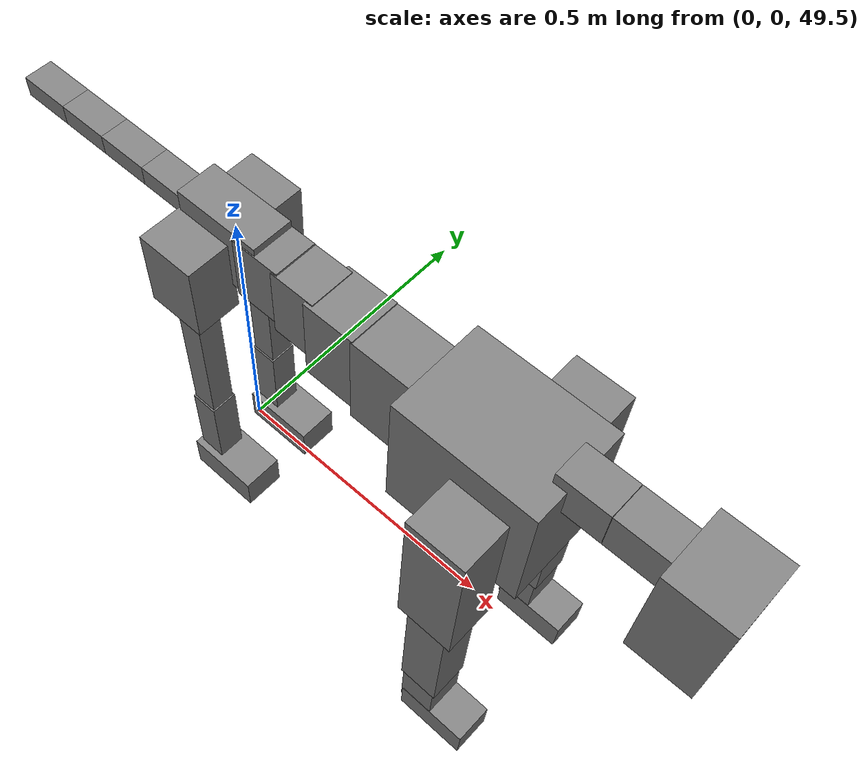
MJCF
<mujoco model="dog">

    <default>
        <joint armature="0.02" stiffness="1" damping="0.2" limited="true"/>
        <geom condim="3" friction="1 0.05 0.05" margin="0.01"/>
        <motor ctrllimited="true" ctrlrange="-1.0 1.0" forcelimited="true" gear="50"/>
    </default>

    <compiler inertiafromgeom="true" angle="radian"/>

    <option timestep="0.016" iterations="50" tolerance="1e-10" solver="Newton" jacobian="dense" cone="pyramidal"/>

    <size nconmax="20000" njmax="60000" nstack="5000000"/>
    <visual>
        <map force="0.1" zfar="30"/>
        <rgba haze="0.15 0.25 0.35 1"/>
        <quality shadowsize="2048"/>
        <global offwidth="800" offheight="800"/>
    </visual>

    <asset>
        <texture type="skybox" builtin="gradient" rgb1="0.3 0.5 0.7" rgb2="0 0 0" width="512" height="512"/>
        <texture name="texplane" type="2d" builtin="checker" rgb1=".2 .3 .4" rgb2=".1 0.15 0.2" width="512" height="512"
                 mark="cross" markrgb=".8 .8 .8"/>
        <texture name="texgeom" type="cube" builtin="flat" mark="cross" width="127" height="1278" rgb1="0.8 0.6 0.4"
                 rgb2="0.8 0.6 0.4" markrgb="1 1 1" random="0.01"/>

        <material name="matplane" reflectance="0.3" texture="texplane" texrepeat="1 1" texuniform="true"/>
        <material name="matgeom" texture="texgeom" texuniform="true" rgba="0.8 0.6 .4 1"/>
    </asset>

    <worldbody>
        <geom name="floor" pos="0 0 0" size="0 0 .25" type="plane" material="matplane" condim="3"/>

        <light directional="false" diffuse=".2 .2 .2" specular="0 0 0" pos="0 0 5" dir="0 0 -1" castshadow="false"/>
        <light mode="targetbodycom" target="torso" directional="false" diffuse=".8 .8 .8" specular="0.3 0.3 0.3"
               pos="0 0 4.0" dir="0 0 -1"/>

        <body name="root" pos="0 0 50">
            <freejoint name="root_1"/>
            <geom type="box" pos="0 0 -0.02" size="0.0774  0.0358  0.063" density="2030"/>

            <body name="spine1" pos="0.054 0 0">
                <joint name="spine1_y" axis="0 1 0" range="0 0.7" limited="true"/>
                <geom type="box" pos="0.02375 0 -0.03" size="0.04375  0.0375  0.05985" density="2030"/>

                <body name="spine2" pos="0.0612 0 0">
                    <joint name="spine2_y" axis="0 1 0" range="-0.15 0.15" limited="true"/>
                    <geom type="box" pos="0.03555  0  -0.04" size="0.04055  0.039  0.06615" density="2030"/>

                    <body name="spine3" pos="0.0730 0 0">
                        <joint name="spine3_y" axis="0 1 0" range="-0.15 0.15" limited="true"/>
                        <geom type="box" pos="0.03555  0  -0.057" size="0.04555  0.0445  0.081" density="2030"/>

                        <body name="spine4" pos="0.0780 0 0">
                            <joint name="spine4_y" axis="0 1 0" range="-0.15 0.15" limited="true"/>
                            <geom type="box" pos="0.05265  0  -0.07" size="0.05265  0.045  0.09135" density="2030"/>

                            <body name="torso" pos="0.1082 0 0">
                                <joint name="torso_y" axis="0 1 0" range="-0.15 0.15" limited="true"/>
                                <geom type="box" pos="0.11925  0  -0.085" size="0.11925  0.085  0.11745"
                                      density="2030"/>

                                <body name="neck1" pos="0.2160  0   0.0180">
                                    <joint name="neck1_y" axis="0 1 0" range="-1.2  -1" limited="true"/>
                                    <geom type="box" pos="0.0423  0  0" size="0.0423  0.03  0.036" density="2325"/>

                                    <body name="neck2" pos="0.0853  0  0">
                                        <joint name="neck2_y" axis="0 1 0" range="0.1  0" limited="true"/>
                                        <geom type="box" pos="0.0423  0  0" size="0.0423  0.03  0.036" density="2325"/>

                                        <body name="head" pos="0.0853  0  0">
                                            <joint name="head_y" axis="0 1 0" range="-0.3  -0.2" limited="true"/>
                                            <geom type="box" pos="0.0531  0  -0.055" size="0.0531  0.06  0.1044"
                                                  density="4030"/>

                                        </body>
                                    </body>
                                </body>

                                <body name="front_shoulder" pos="0.156  0   -0.0480">
                                    <joint name="front_shoulder_y" axis="0 1 0" range="-1 1.5" limited="true"/>
                                    <geom type="box" pos="0 0.13 -0.1121" size="0.0492  0.0421  0.1387" density="1158"/>
                                    <geom type="box" pos="0 -0.13 -0.1121" size="0.0492  0.0421  0.1387"
                                          density="1158"/>

                                    <body name="front_elbow" pos="0  0  -0.2242">
                                        <joint name="front_elbow_y" axis="0 1 0" range="-2 0" limited="true"/>
                                        <geom type="box" pos="0 0.13 -0.1429" size="0.0349  0.0357  0.1429"
                                              density="1081"/>
                                        <geom type="box" pos="0 -0.13 -0.1429" size="0.0349  0.0357  0.1429"
                                              density="1081"/>

                                        <body name="front_wrist" pos="0  0  -0.2858">
                                            <joint name="front_wrist_y" axis="0 1 0" range="-0.2 0" limited="true"/>
                                            <geom type="box" pos="0 0.13 -0.0482" size="0.0311  0.0346  0.0614"
                                                  density="1664"/>
                                            <geom type="box" pos="0 -0.13 -0.0482" size="0.0311  0.0346  0.0614"
                                                  density="1664"/>

                                            <body name="front_finger_end" pos="0  0  -0.0964">
                                                <joint name="front_finger_y" axis="0 1 0" range="-0.4 1"
                                                       limited="true"/>
                                                <geom type="box" pos="0.0349  0.13  -0.0185"
                                                      size="0.0641  0.0349  0.0335" density="1515"/>
                                                <geom type="box" pos="0.0349  -0.13  -0.0185"
                                                      size="0.0641  0.0349  0.0335" density="1515"/>

                                            </body>

                                        </body>
                                    </body>
                                </body>

                            </body>
                        </body>
                    </body>
                </body>
            </body>

            <body name="back_hip" pos="-0.03 0 -0.018">
                <joint name="back_hip_y" axis="0 1 0" range="-1.5 0.3" limited="true"/>
                <geom type="box" pos="0 0.07 -0.0473" size="0.0510  0.0400  0.0701" density="1154"/>
                <geom type="box" pos="0 -0.07 -0.0473" size="0.0510  0.0400  0.0701" density="1154"/>

                <body name="back_knee" pos="0  0  -0.0946">
                    <joint name="back_knee_y" axis="0 1 0" range="0 2.8" limited="true"/>
                    <geom type="box" pos="0 0.07 -0.1504" size="0.0221  0.0217  0.1660" density="1227"/>
                    <geom type="box" pos="0 -0.07 -0.1504" size="0.0221  0.0217  0.1660" density="1227"/>

                    <body name="back_ankle" pos="0  0  -0.3008">
                        <joint name="back_ankle_y" axis="0 1 0" range="-2.2 0" limited="true"/>
                        <geom type="box" pos="0 0.07 -0.0765" size="0.0245  0.0245  0.0877" density="1284"/>
                        <geom type="box" pos="0 -0.07 -0.0765" size="0.0245  0.0245  0.0877" density="1284"/>

                        <body name="back_toe_end" pos="0  0  -0.1529">
                            <joint name="back_toe_y" axis="0 1 0" range="-0.4 1" limited="true"/>
                            <geom type="box" pos="0.0367  0.07  -0.0176" size="0.0672  0.0367  0.0326" density="1515"/>
                            <geom type="box" pos="0.0367  -0.07  -0.0176" size="0.0672  0.0367  0.0326" density="1515"/>

                        </body>
                    </body>
                </body>
            </body>

            <body name="tail1" pos="-0.074 0 -0.006">
                <joint name="tail1_y" axis="0 1 0" range="-0.2 0.2" limited="true"/>
                <geom type="box" pos="-0.0536  0  0" size="0.045  0.025  0.0175" density="1587"/>

                <body name="tail2" pos="-0.09 0 0">
                    <joint name="tail2_y" axis="0 1 0" range="-0.2 0.2" limited="true"/>
                    <geom type="box" pos="-0.0536  0  0" size="0.045  0.025  0.0175" density="1587"/>

                    <body name="tail3" pos="-0.09 0 0">
                        <joint name="tail3_y" axis="0 1 0" range="-0.2 0.2" limited="true"/>
                        <geom type="box" pos="-0.0536  0  0" size="0.045  0.025  0.0175" density="1587"/>

                        <body name="tail4" pos="-0.09 0 0">
                            <joint name="tail4_y" axis="0 1 0" range="-0.2 0.2" limited="true"/>
                            <geom type="box" pos="-0.0536  0  0" size="0.045  0.025  0.0175" density="1587"/>

                        </body>
                    </body>
                </body>
            </body>
        </body>
    </worldbody>

    <actuator>
        <motor joint="spine1_y" forcerange="-150 150     "/>
        <motor joint="spine2_y" forcerange="-150 150     "/>
        <motor joint="spine3_y" forcerange="-150 150     "/>
        <motor joint="spine4_y" forcerange="-150 150     "/>
        <motor joint="torso_y" forcerange="-150 150     "/>
        <motor joint="neck1_y" forcerange="-100 100       "/>
        <motor joint="neck2_y" forcerange="-100 100       "/>
        <motor joint="head_y" forcerange="-150 150       "/>
        <motor joint="front_shoulder_y" forcerange="-183.12 197.22"/>
        <motor joint="front_elbow_y" forcerange="-160.02 199.69"/>
        <motor joint="front_wrist_y" forcerange="-139.80 136.62"/>
        <motor joint="front_finger_y" forcerange="-93.82 52.56"/>
        <motor joint="back_hip_y" forcerange="-353.04 379.86"/>
        <motor joint="back_knee_y" forcerange="-307.01 209.17"/>
        <motor joint="back_angle_y" forcerange="-124.33 167.61"/>
        <motor joint="back_toe_y" forcerange="-93.59 119.61"/>
        <motor joint="tail1_y" forcerange="-50 50     "/>
        <motor joint="tail2_y" forcerange="-50 50     "/>
        <motor joint="tail3_y" forcerange="-50 50     "/>
        <motor joint="tail4_y" forcerange="-50 50     "/>
    </actuator>
</mujoco>
